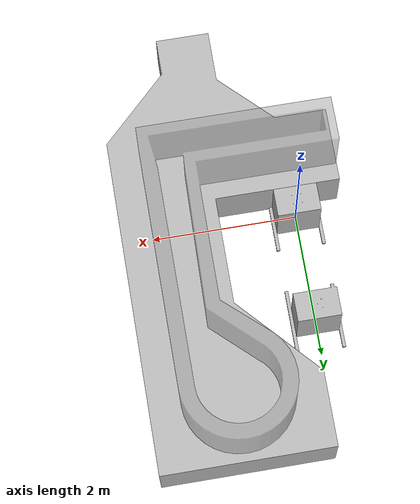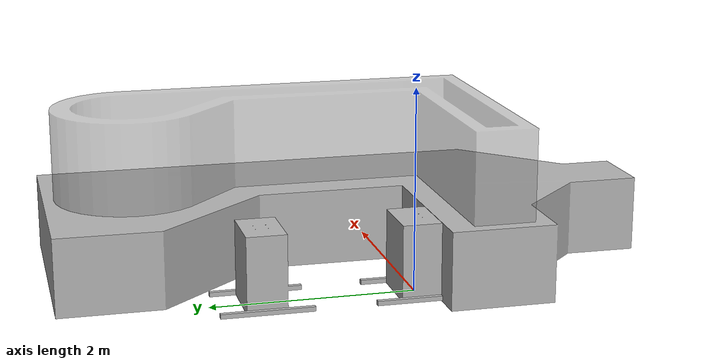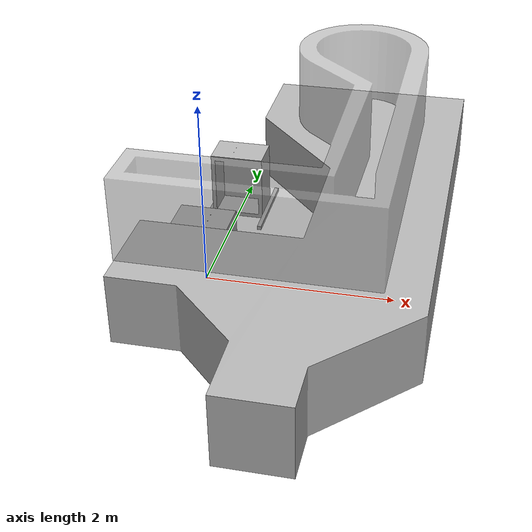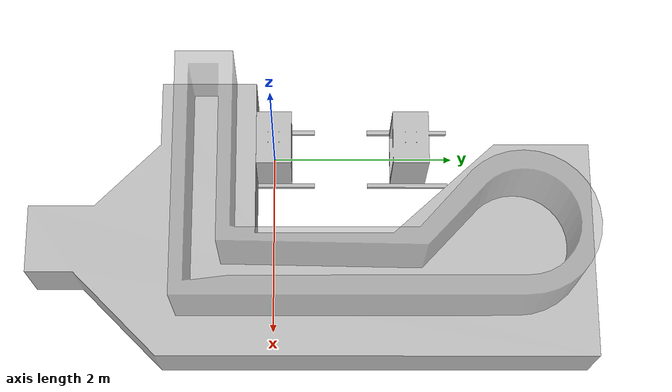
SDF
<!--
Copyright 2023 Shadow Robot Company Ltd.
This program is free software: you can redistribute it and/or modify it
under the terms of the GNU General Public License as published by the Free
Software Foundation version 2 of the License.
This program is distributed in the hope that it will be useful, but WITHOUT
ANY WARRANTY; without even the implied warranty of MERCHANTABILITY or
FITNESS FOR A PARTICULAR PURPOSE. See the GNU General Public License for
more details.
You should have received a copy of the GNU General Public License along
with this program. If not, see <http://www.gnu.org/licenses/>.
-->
<?xml version="1.0" ?>

<sdf version="1.4">
  <world name="default">
    <light type="directional" name="lab_light">
      <pose>0 0 0 -1.55 0 0</pose>
      <diffuse>.8 .8 .8 1</diffuse>
      <specular>.2 .2 .2 1</specular>
      <attenuation>
        <range>20</range>
        <constant>0.9</constant>
        <linear>0.01</linear>
        <quadratic>0.001</quadratic>
      </attenuation>
      <direction>0 0 -1</direction>
      <cast_shadows>true</cast_shadows>
    </light>
    <include>
      <uri>model://stand_small</uri>
      <static>true</static>
      <name>stand_small</name>
      <pose>-0.338887 -0.447438 0 0 0 0</pose>
    </include>
    <include>
      <uri>model://stand_small</uri>
      <static>true</static>
      <name>stand_small_1</name>
      <pose>-0.338887 1.047624 0 0 0 0</pose>
    </include>
    <include>
      <uri>model://filling_line</uri>
      <static>true</static>
      <name>filling_line</name>
      <pose>1.5 -2.6 0.0 0 0 3.1415</pose>
    </include>
    <include>
      <uri>model://laminar_flow</uri>
      <static>true</static>
      <name>laminar_flow</name>
      <pose>1.5 -1 0.8 0 0 3.1415</pose>
    </include>
    <physics type="ode">
      <gravity>0.000000 0.000000 -9.810000</gravity>
      <ode>
        <solver>
          <type>quick</type>
          <iters>100</iters>
          <precon_iters>0</precon_iters>
          <sor>1.000000</sor>
        </solver>
        <constraints>
          <cfm>0.000000</cfm>
          <erp>0.500000</erp>
          <contact_max_correcting_vel>1000.000000</contact_max_correcting_vel>
          <contact_surface_layer>0.00000</contact_surface_layer>
        </constraints>
      </ode>
      <real_time_update_rate>0.000000</real_time_update_rate>
      <max_step_size>0.001000</max_step_size>
    </physics>
    <scene>
      <ambient>0.4 0.4 0.4 1</ambient>
      <background>0.7 0.7 1 1</background>
      <shadows>1</shadows>
    </scene>
    <gui fullscreen='0'>
      <camera name='user_camera'>
        <pose frame=''>2.8784 4.2586 1.43117 0 0.083643 -2.30699</pose>
        <view_controller>orbit</view_controller>
      </camera>
    </gui>
  </world>
</sdf>

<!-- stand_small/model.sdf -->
<sdf version="1.4">
  <model name="stand_small">
    <static>true</static>
    <link name="link">
      <inertial>
        <mass>20</mass>
      </inertial>
      <collision name="collision">
        <pose>0.0 0.0 0.0 0.0 0.0 0.0</pose>
        <geometry>
          <mesh>
            <uri>model://stand_small/meshes/stand_small.STL</uri>
          </mesh>
        </geometry>
      </collision>
      <visual name="visual">
        <pose>0.0 0.0 0.0 0.0 0.0 0.0</pose>
        <geometry>
          <mesh>
            <uri>model://stand_small/meshes/stand_small.STL</uri>
          </mesh>
        </geometry>
      </visual>
    </link>
  </model>
</sdf>

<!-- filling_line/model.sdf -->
<sdf version="1.4">
  <model name="filling_line">
    <static>true</static>
    <link name="link">
      <inertial>
        <mass>20</mass>
      </inertial>
      <collision name="collision">
        <pose>0.0 0.0 0.0 0 0.0 0.0</pose>
        <geometry>
          <mesh>
            <uri>model://filling_line/meshes/filling_line.stl</uri>
          </mesh>
        </geometry>
      </collision>
      <visual name="visual">
        <pose>0.0 0.0 0.0 0 0.0 0.0</pose>
        <geometry>
          <mesh>
            <uri>model://filling_line/meshes/filling_line.stl</uri>
          </mesh>
        </geometry>
      </visual>
    </link>
  </model>
</sdf>

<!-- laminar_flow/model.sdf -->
<sdf version="1.4">
  <model name="laminar_flow">
    <static>true</static>
    <link name="link">
      <inertial>
        <mass>20</mass>
      </inertial>
      <collision name="collision">
        <pose>0.0 0.0 0.0 0 0.0 0.0</pose>
        <geometry>
          <mesh>
            <uri>model://laminar_flow/meshes/laminar_flow.stl</uri>
          </mesh>
        </geometry>
        <material>
          <script>
            <uri>file://media/materials/scripts/gazebo.material</uri>
            <name>Gazebo/DarkGrey</name>
          </script>
        </material>
      </collision>
      <visual name="visual">
        <pose>0.0 0.0 0.0 0 0.0 0.0</pose>
        <geometry>
          <mesh>
            <uri>model://laminar_flow/meshes/laminar_flow.stl</uri>
          </mesh>
        </geometry>
        <material>
          <script>
            <uri>file://media/materials/scripts/gazebo.material</uri>
            <name>Gazebo/GreyTransparent</name>
          </script>
        </material>
      </visual>
    </link>
  </model>
</sdf>
